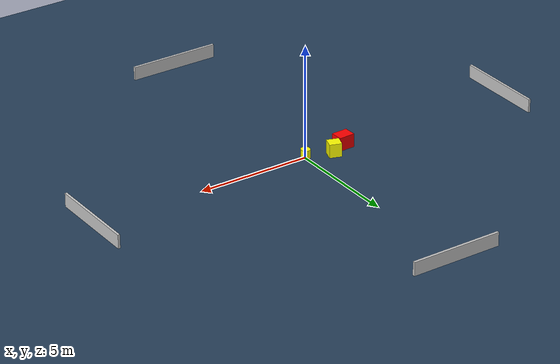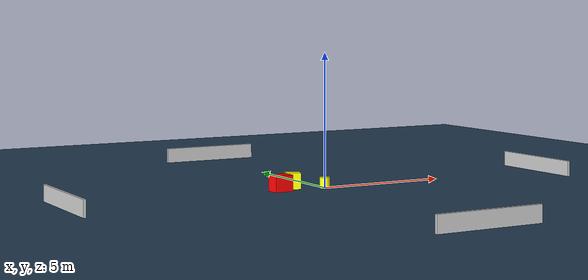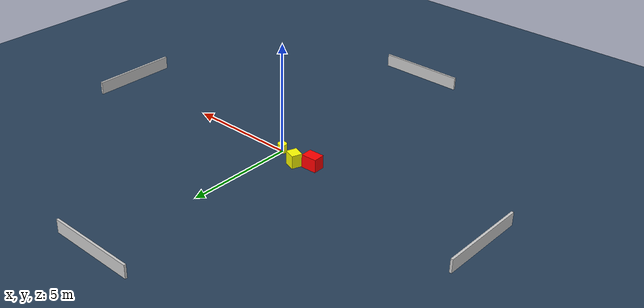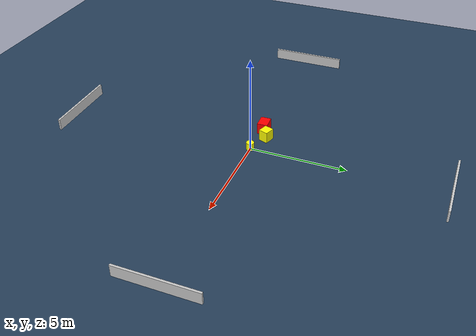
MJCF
<?xml version="1.0" ?>
<mujoco model="generated_environment">
  <option timestep="0.01" integrator="RK4" cone="elliptic"/>
  <default>
    <geom density="1"/>
  </default>
  <asset>
    <texture builtin="gradient" height="3072" name="skybox" rgb1="0.3 0.5 0.7" rgb2="0 0 0" type="skybox" width="512"/>
    <texture builtin="checker" height="300" name="groundplane" rgb1="0.2 0.3 0.4" rgb2="0.1 0.2 0.3" type="2d" width="300"/>
    <material name="groundplane" reflectance="0.2" texrepeat="5 5" texture="groundplane"/>
  </asset>
  <worldbody>
    <light dir="0 0 -1" directional="true" pos="0 0 1.5"/>
    <geom condim="3" friction="0.5 0.005 0.001" material="groundplane" name="floor" pos="0 0 0" size="0 0 0.05" type="plane"/>
    <body name="walls">
      <geom name="wall_1" condim="4" pos="-10.0 0.0 0.3" rgba="0.800000011920929 0.800000011920929 0.800000011920929 1.0" size="0.05 2.0 0.3" type="box"/>
      <geom name="wall_2" condim="4" pos="10.0 0.0 0.3" rgba="0.800000011920929 0.800000011920929 0.800000011920929 1.0" size="0.05 2.0 0.3" type="box"/>
      <geom name="wall_3" condim="4" pos="0.0 -10.0 0.3" rgba="0.800000011920929 0.800000011920929 0.800000011920929 1.0" size="2.0 0.05 0.3" type="box"/>
      <geom name="wall_4" condim="4" pos="0.0 10.0 0.3" rgba="0.800000011920929 0.800000011920929 0.800000011920929 1.0" size="2.0 0.05 0.3" type="box"/>
    </body>
    <body name="robot">
      <joint name="joint_x" type="slide" pos="0 0 0" axis="1 0 0"/>
      <joint name="joint_y" type="slide" pos="0 0 0" axis="0 1 0"/>
      <geom name="robot" type="cylinder" pos="0.0 0.0 0.2" size="0.2 0.2 0.0" mass="5.0" friction="1.0 0.005 0.0001" condim="4" rgba="1.0 1.0 0.0 1.0"/>
    </body>
    <body name="obstacle_1_movable">
      <geom name="obstacle_1_movable" condim="4" pos="-1.101695035676214 0.4474845931162013 0.3" euler="0 0 340.9919591109344" friction="0.0 0.005 0.001" rgba="1.0 1.0 0.0 1.0" size="0.2671953282394366 0.2438289446101205 0.3" type="box" mass="0.1"/>
      <joint type="free"/>
    </body>
    <body name="obstacle_2_static">
      <geom name="obstacle_2_static" condim="4" pos="-1.8059025899930772 0.0842350261905276 0.3" euler="0 0 182.1789967437031" friction="0.0 0.005 0.001" rgba="1.0 0.0 0.0 1.0" size="0.3540575179132951 0.26871159324963767 0.3" type="box"/>
    </body>
  </worldbody>
  <actuator>
    <motor name="actuator_x" joint="joint_x" gear="1" ctrlrange="-1 1"/>
    <motor name="actuator_y" joint="joint_y" gear="1" ctrlrange="-1 1"/>
  </actuator>
</mujoco>
